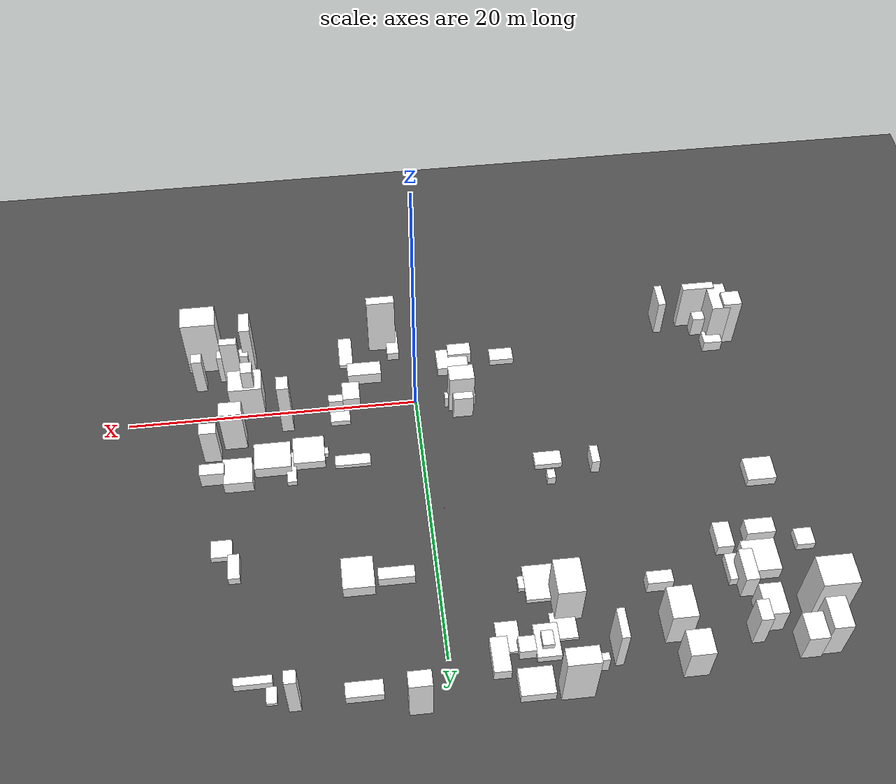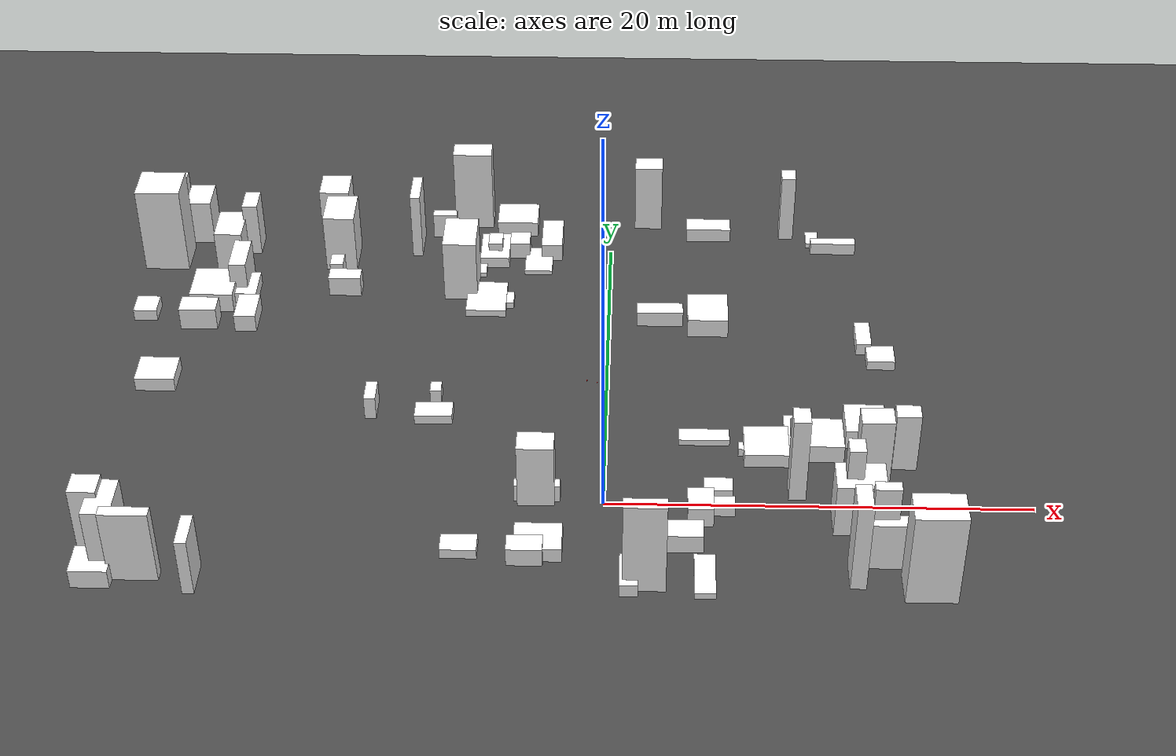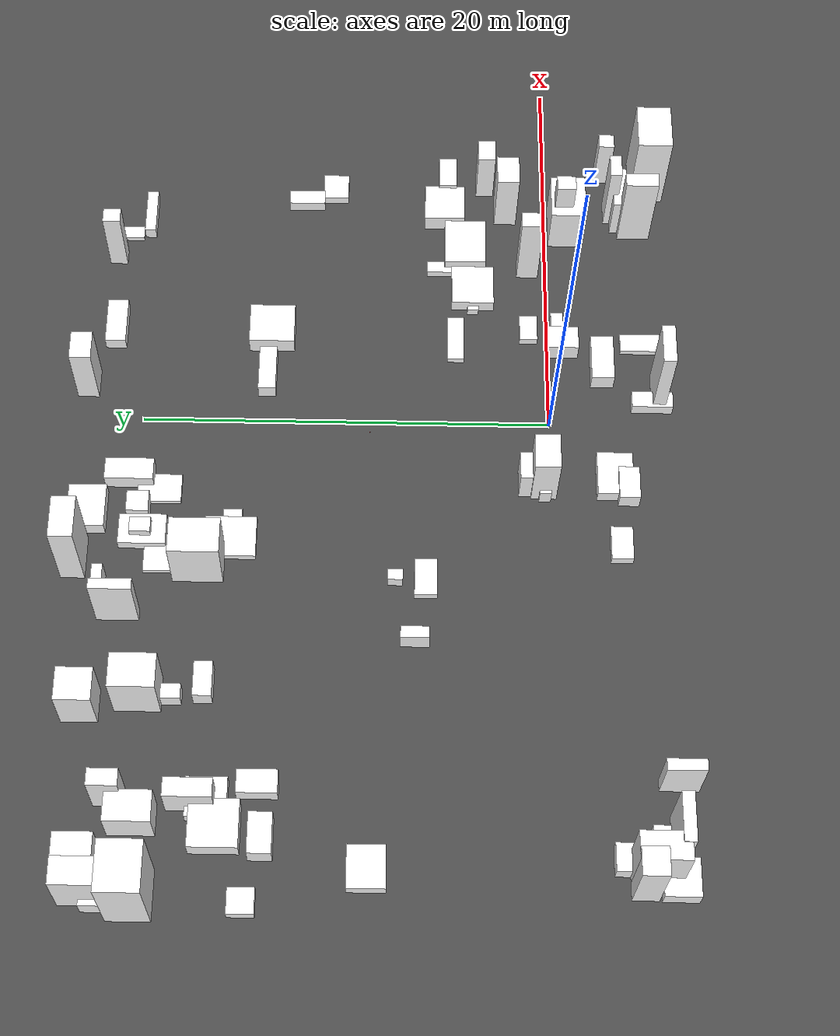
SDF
<sdf version="1.6">
 <world name="mirror_edge_world">
  <model name="ground_plane">
   <static>true</static>
   <link name="link">
    <collision name="collision">
     <geometry><plane><normal>0 0 1</normal><size>100 100</size></plane></geometry>
    </collision>
    <visual name="visual">
     <geometry><plane><normal>0 0 1</normal><size>100 100</size></plane></geometry>
     <material>
      <ambient>0.3 0.3 0.3 1</ambient>
      <diffuse>0.3 0.3 0.3 1</diffuse>
      <specular>0.5 0.5 0.5 1</specular>
      <emissive>0 0 0 1</emissive>
     </material>
    </visual>
   </link>
  </model>
  <model name="highlighted_corridor_hex_547">
   <static>true</static>
   <link name="link">
    <pose>0.024 8.696 0.015 0 0 0</pose>
    <visual name="visual">
     <geometry><cylinder><radius>0.02</radius><length>0.03</length><segments>6</segments></cylinder></geometry>
     <material>
      <ambient>1 0 0 1</ambient>
      <diffuse>1 0 0 1</diffuse>
      <specular>0.3 0.3 0.3 1</specular>
      <emissive>0 0 0 1</emissive>
     </material>
    </visual>
   </link>
  </model>
  <model name="highlighted_corridor_hex_548">
   <static>true</static>
   <link name="link">
    <pose>-0.487 8.847 0.015 0 0 0</pose>
    <visual name="visual">
     <geometry><cylinder><radius>0.02</radius><length>0.03</length><segments>6</segments></cylinder></geometry>
     <material>
      <ambient>1 0 0 1</ambient>
      <diffuse>1 0 0 1</diffuse>
      <specular>0.3 0.3 0.3 1</specular>
      <emissive>0 0 0 1</emissive>
     </material>
    </visual>
   </link>
  </model>
  <model name="highlighted_corridor_hex_549">
   <static>true</static>
   <link name="link">
    <pose>-1.0 9.0 0.015 0 0 0</pose>
    <visual name="visual">
     <geometry><cylinder><radius>0.02</radius><length>0.03</length><segments>6</segments></cylinder></geometry>
     <material>
      <ambient>1 0 0 1</ambient>
      <diffuse>1 0 0 1</diffuse>
      <specular>0.3 0.3 0.3 1</specular>
      <emissive>0 0 0 1</emissive>
     </material>
    </visual>
   </link>
  </model>
  <model name="block_0_1">
   <static>true</static>
   <link name="link">
    <pose>2.629444513336491 13.981315160203227 0.4269476987803491 0 0 0</pose>
    <collision name="collision">
     <geometry><box><size>2.3701532690823557 0.8626031007636439 0.8538953975606982</size></box></geometry>
    </collision>
    <visual name="visual">
     <geometry><box><size>2.3701532690823557 0.8626031007636439 0.8538953975606982</size></box></geometry>
     <material>
      <ambient>1 1 1 1</ambient>
      <diffuse>1 1 1 1</diffuse>
      <specular>0.9 0.9 0.9 1</specular>
      <emissive>0.05 0.05 0.05 1</emissive>
     </material>
    </visual>
   </link>
  </model>
  <model name="block_0_3">
   <static>true</static>
   <link name="link">
    <pose>-18.273868006949378 -5.4173685859005545 1.5274202341797292 0 0 0</pose>
    <visual name="visual">
     <geometry><box><size>0.5406038320486868 1.8089959335746422 3.0548404683594583</size></box></geometry>
     <material>
      <ambient>1 1 1 1</ambient>
      <diffuse>1 1 1 1</diffuse>
      <specular>0.9 0.9 0.9 1</specular>
      <emissive>0.05 0.05 0.05 1</emissive>
     </material>
    </visual>
   </link>
  </model>
  <model name="block_0_5">
   <static>true</static>
   <link name="link">
    <pose>-3.8352184328321 18.96808512698276 0.12516735218964414 0 0 0</pose>
    <collision name="collision">
     <geometry><box><size>1.4496706448813697 2.1323757690983705 0.2503347043792883</size></box></geometry>
    </collision>
    <visual name="visual">
     <geometry><box><size>1.4496706448813697 2.1323757690983705 0.2503347043792883</size></box></geometry>
     <material>
      <ambient>1 1 1 1</ambient>
      <diffuse>1 1 1 1</diffuse>
      <specular>0.9 0.9 0.9 1</specular>
      <emissive>0.05 0.05 0.05 1</emissive>
     </material>
    </visual>
   </link>
  </model>
  <model name="block_0_7">
   <static>true</static>
   <link name="link">
    <pose>9.480284427950288 21.92573647014885 1.9576652897797775 0 0 0</pose>
    <visual name="visual">
     <geometry><box><size>0.751335079702804 0.8666775056876104 3.915330579559555</size></box></geometry>
     <material>
      <ambient>1 1 1 1</ambient>
      <diffuse>1 1 1 1</diffuse>
      <specular>0.9 0.9 0.9 1</specular>
      <emissive>0.05 0.05 0.05 1</emissive>
     </material>
    </visual>
   </link>
  </model>
  <model name="block_0_13">
   <static>true</static>
   <link name="link">
    <pose>-7.522504332136052 22.814257885947693 2.339742844086078 0 0 0</pose>
    <visual name="visual">
     <geometry><box><size>2.0579455697241 1.152048496870761 4.679485688172156</size></box></geometry>
     <material>
      <ambient>1 1 1 1</ambient>
      <diffuse>1 1 1 1</diffuse>
      <specular>0.9 0.9 0.9 1</specular>
      <emissive>0.05 0.05 0.05 1</emissive>
     </material>
    </visual>
   </link>
  </model>
  <model name="block_0_14">
   <static>true</static>
   <link name="link">
    <pose>-21.109602233800054 13.335540294057918 0.6138343270782778 0 0 0</pose>
    <collision name="collision">
     <geometry><box><size>1.895913555698115 1.1050259542681802 1.2276686541565556</size></box></geometry>
    </collision>
    <visual name="visual">
     <geometry><box><size>1.895913555698115 1.1050259542681802 1.2276686541565556</size></box></geometry>
     <material>
      <ambient>1 1 1 1</ambient>
      <diffuse>1 1 1 1</diffuse>
      <specular>0.9 0.9 0.9 1</specular>
      <emissive>0.05 0.05 0.05 1</emissive>
     </material>
    </visual>
   </link>
  </model>
  <model name="block_0_16">
   <static>true</static>
   <link name="link">
    <pose>6.755678615682477 3.7517630676425453 0.21268586845512416 0 0 0</pose>
    <collision name="collision">
     <geometry><box><size>0.7675708202989666 0.5496086750619544 0.4253717369102483</size></box></geometry>
    </collision>
    <visual name="visual">
     <geometry><box><size>0.7675708202989666 0.5496086750619544 0.4253717369102483</size></box></geometry>
     <material>
      <ambient>1 1 1 1</ambient>
      <diffuse>1 1 1 1</diffuse>
      <specular>0.9 0.9 0.9 1</specular>
      <emissive>0.05 0.05 0.05 1</emissive>
     </material>
    </visual>
   </link>
  </model>
  <model name="block_0_18">
   <static>true</static>
   <link name="link">
    <pose>-23.71762395589862 20.303737631425747 0.5513021663933786 0 0 0</pose>
    <visual name="visual">
     <geometry><box><size>1.513216198312841 1.6086247681420796 1.1026043327867572</size></box></geometry>
     <material>
      <ambient>1 1 1 1</ambient>
      <diffuse>1 1 1 1</diffuse>
      <specular>0.9 0.9 0.9 1</specular>
      <emissive>0.05 0.05 0.05 1</emissive>
     </material>
    </visual>
   </link>
  </model>
  <model name="block_0_20">
   <static>true</static>
   <link name="link">
    <pose>-19.37108987945101 15.834262061965447 0.3560634926517705 0 0 0</pose>
    <collision name="collision">
     <geometry><box><size>1.853156588282586 1.8919106253806988 0.712126985303541</size></box></geometry>
    </collision>
    <visual name="visual">
     <geometry><box><size>1.853156588282586 1.8919106253806988 0.712126985303541</size></box></geometry>
     <material>
      <ambient>1 1 1 1</ambient>
      <diffuse>1 1 1 1</diffuse>
      <specular>0.9 0.9 0.9 1</specular>
      <emissive>0.05 0.05 0.05 1</emissive>
     </material>
    </visual>
   </link>
  </model>
  <model name="block_0_21">
   <static>true</static>
   <link name="link">
    <pose>-20.856737984555473 -5.245145179782628 1.9544610133703997 0 0 0</pose>
    <visual name="visual">
     <geometry><box><size>2.2417564655710596 0.5783738479369185 3.9089220267407994</size></box></geometry>
     <material>
      <ambient>1 1 1 1</ambient>
      <diffuse>1 1 1 1</diffuse>
      <specular>0.9 0.9 0.9 1</specular>
      <emissive>0.05 0.05 0.05 1</emissive>
     </material>
    </visual>
   </link>
  </model>
  <model name="block_0_23">
   <static>true</static>
   <link name="link">
    <pose>-6.413144364087131 15.416412024783103 0.1950194207174974 0 0 0</pose>
    <collision name="collision">
     <geometry><box><size>2.062364448417422 2.4881167213685345 0.3900388414349948</size></box></geometry>
    </collision>
    <visual name="visual">
     <geometry><box><size>2.062364448417422 2.4881167213685345 0.3900388414349948</size></box></geometry>
     <material>
      <ambient>1 1 1 1</ambient>
      <diffuse>1 1 1 1</diffuse>
      <specular>0.9 0.9 0.9 1</specular>
      <emissive>0.05 0.05 0.05 1</emissive>
     </material>
    </visual>
   </link>
  </model>
  <model name="block_0_28">
   <static>true</static>
   <link name="link">
    <pose>-21.839530540577137 -2.9065588741655066 0.46345977891683054 0 0 0</pose>
    <collision name="collision">
     <geometry><box><size>1.3049100902056885 1.0682382346519728 0.9269195578336611</size></box></geometry>
    </collision>
    <visual name="visual">
     <geometry><box><size>1.3049100902056885 1.0682382346519728 0.9269195578336611</size></box></geometry>
     <material>
      <ambient>1 1 1 1</ambient>
      <diffuse>1 1 1 1</diffuse>
      <specular>0.9 0.9 0.9 1</specular>
      <emissive>0.05 0.05 0.05 1</emissive>
     </material>
    </visual>
   </link>
  </model>
  <model name="block_0_31">
   <static>true</static>
   <link name="link">
    <pose>-23.703693338204445 18.986134512960607 2.42406714559323 0 0 0</pose>
    <visual name="visual">
     <geometry><box><size>2.315108026896314 2.02937166579087 4.84813429118646</size></box></geometry>
     <material>
      <ambient>1 1 1 1</ambient>
      <diffuse>1 1 1 1</diffuse>
      <specular>0.9 0.9 0.9 1</specular>
      <emissive>0.05 0.05 0.05 1</emissive>
     </material>
    </visual>
   </link>
  </model>
  <model name="block_0_32">
   <static>true</static>
   <link name="link">
    <pose>7.698962368049095 3.769381362437355 0.3718673924456554 0 0 0</pose>
    <collision name="collision">
     <geometry><box><size>2.1429566818489416 2.126988929909519 0.7437347848913108</size></box></geometry>
    </collision>
    <visual name="visual">
     <geometry><box><size>2.1429566818489416 2.126988929909519 0.7437347848913108</size></box></geometry>
     <material>
      <ambient>1 1 1 1</ambient>
      <diffuse>1 1 1 1</diffuse>
      <specular>0.9 0.9 0.9 1</specular>
      <emissive>0.05 0.05 0.05 1</emissive>
     </material>
    </visual>
   </link>
  </model>
  <model name="block_0_33">
   <static>true</static>
   <link name="link">
    <pose>5.367450124069432 0.9660401321900238 0.22560128084921166 0 0 0</pose>
    <collision name="collision">
     <geometry><box><size>1.3599452753188017 0.8900022095706712 0.4512025616984233</size></box></geometry>
    </collision>
    <visual name="visual">
     <geometry><box><size>1.3599452753188017 0.8900022095706712 0.4512025616984233</size></box></geometry>
     <material>
      <ambient>1 1 1 1</ambient>
      <diffuse>1 1 1 1</diffuse>
      <specular>0.9 0.9 0.9 1</specular>
      <emissive>0.05 0.05 0.05 1</emissive>
     </material>
    </visual>
   </link>
  </model>
  <model name="block_0_36">
   <static>true</static>
   <link name="link">
    <pose>-21.42127790640174 -4.358917305977949 0.8458310567495615 0 0 0</pose>
    <visual name="visual">
     <geometry><box><size>1.6201014993000642 0.7743602277613992 1.691662113499123</size></box></geometry>
     <material>
      <ambient>1 1 1 1</ambient>
      <diffuse>1 1 1 1</diffuse>
      <specular>0.9 0.9 0.9 1</specular>
      <emissive>0.05 0.05 0.05 1</emissive>
     </material>
    </visual>
   </link>
  </model>
  <model name="block_0_41">
   <static>true</static>
   <link name="link">
    <pose>-3.4793820392597823 -3.7263772785713614 0.48616672487868307 0 0 0</pose>
    <collision name="collision">
     <geometry><box><size>1.653894337966383 1.0089899510909628 0.9723334497573661</size></box></geometry>
    </collision>
    <visual name="visual">
     <geometry><box><size>1.653894337966383 1.0089899510909628 0.9723334497573661</size></box></geometry>
     <material>
      <ambient>1 1 1 1</ambient>
      <diffuse>1 1 1 1</diffuse>
      <specular>0.9 0.9 0.9 1</specular>
      <emissive>0.05 0.05 0.05 1</emissive>
     </material>
    </visual>
   </link>
  </model>
  <model name="block_0_42">
   <static>true</static>
   <link name="link">
    <pose>-7.406578529971302 18.57170572120448 0.13677045470906196 0 0 0</pose>
    <collision name="collision">
     <geometry><box><size>1.6328084682620279 1.8653019584591002 0.2735409094181239</size></box></geometry>
    </collision>
    <visual name="visual">
     <geometry><box><size>1.6328084682620279 1.8653019584591002 0.2735409094181239</size></box></geometry>
     <material>
      <ambient>1 1 1 1</ambient>
      <diffuse>1 1 1 1</diffuse>
      <specular>0.9 0.9 0.9 1</specular>
      <emissive>0.05 0.05 0.05 1</emissive>
     </material>
    </visual>
   </link>
  </model>
  <model name="block_0_43">
   <static>true</static>
   <link name="link">
    <pose>4.643851952008163 -4.876867942431691 0.16879219770917786 0 0 0</pose>
    <collision name="collision">
     <geometry><box><size>0.9598692796326942 2.4956226432378505 0.3375843954183557</size></box></geometry>
    </collision>
    <visual name="visual">
     <geometry><box><size>0.9598692796326942 2.4956226432378505 0.3375843954183557</size></box></geometry>
     <material>
      <ambient>1 1 1 1</ambient>
      <diffuse>1 1 1 1</diffuse>
      <specular>0.9 0.9 0.9 1</specular>
      <emissive>0.05 0.05 0.05 1</emissive>
     </material>
    </visual>
   </link>
  </model>
  <model name="block_0_45">
   <static>true</static>
   <link name="link">
    <pose>-19.28074984160375 20.231629219767814 1.5053115837664646 0 0 0</pose>
    <visual name="visual">
     <geometry><box><size>0.7983353302962468 1.4119111531609847 3.010623167532929</size></box></geometry>
     <material>
      <ambient>1 1 1 1</ambient>
      <diffuse>1 1 1 1</diffuse>
      <specular>0.9 0.9 0.9 1</specular>
      <emissive>0.05 0.05 0.05 1</emissive>
     </material>
    </visual>
   </link>
  </model>
  <model name="block_0_48">
   <static>true</static>
   <link name="link">
    <pose>-23.565720476234148 21.08714716693098 1.7139107302081764 0 0 0</pose>
    <visual name="visual">
     <geometry><box><size>1.2669333502445381 2.127053407528151 3.427821460416353</size></box></geometry>
     <material>
      <ambient>1 1 1 1</ambient>
      <diffuse>1 1 1 1</diffuse>
      <specular>0.9 0.9 0.9 1</specular>
      <emissive>0.05 0.05 0.05 1</emissive>
     </material>
    </visual>
   </link>
  </model>
  <model name="block_0_49">
   <static>true</static>
   <link name="link">
    <pose>12.495422146052576 5.194693032887604 0.5214726340098346 0 0 0</pose>
    <visual name="visual">
     <geometry><box><size>1.9661904336053282 2.0338894365308784 1.0429452680196691</size></box></geometry>
     <material>
      <ambient>1 1 1 1</ambient>
      <diffuse>1 1 1 1</diffuse>
      <specular>0.9 0.9 0.9 1</specular>
      <emissive>0.05 0.05 0.05 1</emissive>
     </material>
    </visual>
   </link>
  </model>
  <model name="block_0_50">
   <static>true</static>
   <link name="link">
    <pose>14.624827529963788 -5.286655872249478 2.4849495876334755 0 0 0</pose>
    <visual name="visual">
     <geometry><box><size>2.3690260256833104 1.7209152380778632 4.969899175266951</size></box></geometry>
     <material>
      <ambient>1 1 1 1</ambient>
      <diffuse>1 1 1 1</diffuse>
      <specular>0.9 0.9 0.9 1</specular>
      <emissive>0.05 0.05 0.05 1</emissive>
     </material>
    </visual>
   </link>
  </model>
  <model name="block_0_52">
   <static>true</static>
   <link name="link">
    <pose>-2.9017386907661233 -3.074098491872549 0.38654898876220134 0 0 0</pose>
    <collision name="collision">
     <geometry><box><size>2.205480444679205 1.7390335458004285 0.7730979775244027</size></box></geometry>
    </collision>
    <visual name="visual">
     <geometry><box><size>2.205480444679205 1.7390335458004285 0.7730979775244027</size></box></geometry>
     <material>
      <ambient>1 1 1 1</ambient>
      <diffuse>1 1 1 1</diffuse>
      <specular>0.9 0.9 0.9 1</specular>
      <emissive>0.05 0.05 0.05 1</emissive>
     </material>
    </visual>
   </link>
  </model>
  <model name="block_0_53">
   <static>true</static>
   <link name="link">
    <pose>3.4270410552564137 -2.6563073322089035 0.49906583283253253 0 0 0</pose>
    <collision name="collision">
     <geometry><box><size>2.3679812661802457 1.125164629689853 0.9981316656650651</size></box></geometry>
    </collision>
    <visual name="visual">
     <geometry><box><size>2.3679812661802457 1.125164629689853 0.9981316656650651</size></box></geometry>
     <material>
      <ambient>1 1 1 1</ambient>
      <diffuse>1 1 1 1</diffuse>
      <specular>0.9 0.9 0.9 1</specular>
      <emissive>0.05 0.05 0.05 1</emissive>
     </material>
    </visual>
   </link>
  </model>
  <model name="block_0_54">
   <static>true</static>
   <link name="link">
    <pose>-22.24149848192369 21.37847639963477 1.261527958747312 0 0 0</pose>
    <visual name="visual">
     <geometry><box><size>1.3001545962151229 1.8091949695556868 2.523055917494624</size></box></geometry>
     <material>
      <ambient>1 1 1 1</ambient>
      <diffuse>1 1 1 1</diffuse>
      <specular>0.9 0.9 0.9 1</specular>
      <emissive>0.05 0.05 0.05 1</emissive>
     </material>
    </visual>
   </link>
  </model>
  <model name="block_0_56">
   <static>true</static>
   <link name="link">
    <pose>11.9433464176469 20.385797163674933 0.3385297522512108 0 0 0</pose>
    <collision name="collision">
     <geometry><box><size>2.384854056991715 0.5508524773355725 0.6770595045024216</size></box></geometry>
    </collision>
    <visual name="visual">
     <geometry><box><size>2.384854056991715 0.5508524773355725 0.6770595045024216</size></box></geometry>
     <material>
      <ambient>1 1 1 1</ambient>
      <diffuse>1 1 1 1</diffuse>
      <specular>0.9 0.9 0.9 1</specular>
      <emissive>0.05 0.05 0.05 1</emissive>
     </material>
    </visual>
   </link>
  </model>
  <model name="block_0_58">
   <static>true</static>
   <link name="link">
    <pose>1.9912580201610908 22.845832839678657 1.9519743382782802 0 0 0</pose>
    <visual name="visual">
     <geometry><box><size>1.446916084502937 1.0459190653577304 3.9039486765565603</size></box></geometry>
     <material>
      <ambient>1 1 1 1</ambient>
      <diffuse>1 1 1 1</diffuse>
      <specular>0.9 0.9 0.9 1</specular>
      <emissive>0.05 0.05 0.05 1</emissive>
     </material>
    </visual>
   </link>
  </model>
  <model name="block_0_65">
   <static>true</static>
   <link name="link">
    <pose>-14.49853010107496 18.039107482353177 0.4883631403128049 0 0 0</pose>
    <collision name="collision">
     <geometry><box><size>0.6945020475818915 1.5757758818101648 0.9767262806256098</size></box></geometry>
    </collision>
    <visual name="visual">
     <geometry><box><size>0.6945020475818915 1.5757758818101648 0.9767262806256098</size></box></geometry>
     <material>
      <ambient>1 1 1 1</ambient>
      <diffuse>1 1 1 1</diffuse>
      <specular>0.9 0.9 0.9 1</specular>
      <emissive>0.05 0.05 0.05 1</emissive>
     </material>
    </visual>
   </link>
  </model>
  <model name="block_0_66">
   <static>true</static>
   <link name="link">
    <pose>-8.400671071945288 6.052286329398913 0.24929776146395155 0 0 0</pose>
    <collision name="collision">
     <geometry><box><size>1.8422506774499918 1.074176008124148 0.4985955229279031</size></box></geometry>
    </collision>
    <visual name="visual">
     <geometry><box><size>1.8422506774499918 1.074176008124148 0.4985955229279031</size></box></geometry>
     <material>
      <ambient>1 1 1 1</ambient>
      <diffuse>1 1 1 1</diffuse>
      <specular>0.9 0.9 0.9 1</specular>
      <emissive>0.05 0.05 0.05 1</emissive>
     </material>
    </visual>
   </link>
  </model>
  <model name="block_0_67">
   <static>true</static>
   <link name="link">
    <pose>12.62508989323895 -3.330745463682743 2.1777966595249643 0 0 0</pose>
    <visual name="visual">
     <geometry><box><size>1.1871718024264302 0.5721815843821825 4.3555933190499285</size></box></geometry>
     <material>
      <ambient>1 1 1 1</ambient>
      <diffuse>1 1 1 1</diffuse>
      <specular>0.9 0.9 0.9 1</specular>
      <emissive>0.05 0.05 0.05 1</emissive>
     </material>
    </visual>
   </link>
  </model>
  <model name="block_1_1">
   <static>true</static>
   <link name="link">
    <pose>-23.996591118951777 14.080130138798122 0.31013549173174104 0 0 0</pose>
    <collision name="collision">
     <geometry><box><size>1.1995651236787712 1.2419921461193266 0.6202709834634821</size></box></geometry>
    </collision>
    <visual name="visual">
     <geometry><box><size>1.1995651236787712 1.2419921461193266 0.6202709834634821</size></box></geometry>
     <material>
      <ambient>1 1 1 1</ambient>
      <diffuse>1 1 1 1</diffuse>
      <specular>0.9 0.9 0.9 1</specular>
      <emissive>0.05 0.05 0.05 1</emissive>
     </material>
    </visual>
   </link>
  </model>
  <model name="block_1_3">
   <static>true</static>
   <link name="link">
    <pose>-20.67270229569463 15.418844965602378 0.548886509817033 0 0 0</pose>
    <visual name="visual">
     <geometry><box><size>2.2329226408507274 2.2964705875090985 1.097773019634066</size></box></geometry>
     <material>
      <ambient>1 1 1 1</ambient>
      <diffuse>1 1 1 1</diffuse>
      <specular>0.9 0.9 0.9 1</specular>
      <emissive>0.05 0.05 0.05 1</emissive>
     </material>
    </visual>
   </link>
  </model>
  <model name="block_1_7">
   <static>true</static>
   <link name="link">
    <pose>-18.681572058848502 13.571074400856126 0.47995678192979313 0 0 0</pose>
    <collision name="collision">
     <geometry><box><size>1.105224794810614 1.8836158707953992 0.9599135638595863</size></box></geometry>
    </collision>
    <visual name="visual">
     <geometry><box><size>1.105224794810614 1.8836158707953992 0.9599135638595863</size></box></geometry>
     <material>
      <ambient>1 1 1 1</ambient>
      <diffuse>1 1 1 1</diffuse>
      <specular>0.9 0.9 0.9 1</specular>
      <emissive>0.05 0.05 0.05 1</emissive>
     </material>
    </visual>
   </link>
  </model>
  <model name="block_1_10">
   <static>true</static>
   <link name="link">
    <pose>-7.789768321775842 16.85820155292157 1.736157896754126 0 0 0</pose>
    <visual name="visual">
     <geometry><box><size>1.7293843462898204 2.410631189251779 3.472315793508252</size></box></geometry>
     <material>
      <ambient>1 1 1 1</ambient>
      <diffuse>1 1 1 1</diffuse>
      <specular>0.9 0.9 0.9 1</specular>
      <emissive>0.05 0.05 0.05 1</emissive>
     </material>
    </visual>
   </link>
  </model>
  <model name="block_1_11">
   <static>true</static>
   <link name="link">
    <pose>-11.499437916183552 6.549853693440727 0.6082840659264529 0 0 0</pose>
    <collision name="collision">
     <geometry><box><size>0.564934390722093 1.3615767898200373 1.2165681318529058</size></box></geometry>
    </collision>
    <visual name="visual">
     <geometry><box><size>0.564934390722093 1.3615767898200373 1.2165681318529058</size></box></geometry>
     <material>
      <ambient>1 1 1 1</ambient>
      <diffuse>1 1 1 1</diffuse>
      <specular>0.9 0.9 0.9 1</specular>
      <emissive>0.05 0.05 0.05 1</emissive>
     </material>
    </visual>
   </link>
  </model>
  <model name="block_1_14">
   <static>true</static>
   <link name="link">
    <pose>10.871346085913082 21.279167339518793 0.13368172636693965 0 0 0</pose>
    <collision name="collision">
     <geometry><box><size>0.6630004812755352 1.1135532611240513 0.2673634527338793</size></box></geometry>
    </collision>
    <visual name="visual">
     <geometry><box><size>0.6630004812755352 1.1135532611240513 0.2673634527338793</size></box></geometry>
     <material>
      <ambient>1 1 1 1</ambient>
      <diffuse>1 1 1 1</diffuse>
      <specular>0.9 0.9 0.9 1</specular>
      <emissive>0.05 0.05 0.05 1</emissive>
     </material>
    </visual>
   </link>
  </model>
  <model name="block_1_16">
   <static>true</static>
   <link name="link">
    <pose>11.709721149926558 -1.0243684717145376 1.4373108790838298 0 0 0</pose>
    <visual name="visual">
     <geometry><box><size>2.311394147516197 1.7515218412176905 2.8746217581676596</size></box></geometry>
     <material>
      <ambient>1 1 1 1</ambient>
      <diffuse>1 1 1 1</diffuse>
      <specular>0.9 0.9 0.9 1</specular>
      <emissive>0.05 0.05 0.05 1</emissive>
     </material>
    </visual>
   </link>
  </model>
  <model name="block_1_18">
   <static>true</static>
   <link name="link">
    <pose>-22.41166076357768 8.615046499795437 0.37055608547858065 0 0 0</pose>
    <collision name="collision">
     <geometry><box><size>1.9802369601095118 1.7702593418495576 0.7411121709571613</size></box></geometry>
    </collision>
    <visual name="visual">
     <geometry><box><size>1.9802369601095118 1.7702593418495576 0.7411121709571613</size></box></geometry>
     <material>
      <ambient>1 1 1 1</ambient>
      <diffuse>1 1 1 1</diffuse>
      <specular>0.9 0.9 0.9 1</specular>
      <emissive>0.05 0.05 0.05 1</emissive>
     </material>
    </visual>
   </link>
  </model>
  <model name="block_1_20">
   <static>true</static>
   <link name="link">
    <pose>-22.115563770494244 -4.223029042418254 1.9017977120916332 0 0 0</pose>
    <visual name="visual">
     <geometry><box><size>1.2906029649706958 2.2968445982548618 3.8035954241832663</size></box></geometry>
     <material>
      <ambient>1 1 1 1</ambient>
      <diffuse>1 1 1 1</diffuse>
      <specular>0.9 0.9 0.9 1</specular>
      <emissive>0.05 0.05 0.05 1</emissive>
     </material>
    </visual>
   </link>
  </model>
  <model name="block_1_26">
   <static>true</static>
   <link name="link">
    <pose>14.213701324948957 5.042983742585776 0.646047609427207 0 0 0</pose>
    <visual name="visual">
     <geometry><box><size>1.6569587933766257 0.8956356283868563 1.292095218854414</size></box></geometry>
     <material>
      <ambient>1 1 1 1</ambient>
      <diffuse>1 1 1 1</diffuse>
      <specular>0.9 0.9 0.9 1</specular>
      <emissive>0.05 0.05 0.05 1</emissive>
     </material>
    </visual>
   </link>
  </model>
  <model name="block_1_29">
   <static>true</static>
   <link name="link">
    <pose>-22.891715956063592 -3.688284922354036 2.0511497218501487 0 0 0</pose>
    <visual name="visual">
     <geometry><box><size>1.2972639435842999 1.2216080200055859 4.102299443700297</size></box></geometry>
     <material>
      <ambient>1 1 1 1</ambient>
      <diffuse>1 1 1 1</diffuse>
      <specular>0.9 0.9 0.9 1</specular>
      <emissive>0.05 0.05 0.05 1</emissive>
     </material>
    </visual>
   </link>
  </model>
  <model name="block_1_31">
   <static>true</static>
   <link name="link">
    <pose>12.638004833948258 2.0637438273320035 1.9131439175529716 0 0 0</pose>
    <visual name="visual">
     <geometry><box><size>1.5469200426190246 1.1100366738948544 3.8262878351059433</size></box></geometry>
     <material>
      <ambient>1 1 1 1</ambient>
      <diffuse>1 1 1 1</diffuse>
      <specular>0.9 0.9 0.9 1</specular>
      <emissive>0.05 0.05 0.05 1</emissive>
     </material>
    </visual>
   </link>
  </model>
  <model name="block_1_32">
   <static>true</static>
   <link name="link">
    <pose>5.088066297430366 -0.4506466897997763 0.3574355079418666 0 0 0</pose>
    <collision name="collision">
     <geometry><box><size>2.0401307124265595 0.606362487570371 0.7148710158837333</size></box></geometry>
    </collision>
    <visual name="visual">
     <geometry><box><size>2.0401307124265595 0.606362487570371 0.7148710158837333</size></box></geometry>
     <material>
      <ambient>1 1 1 1</ambient>
      <diffuse>1 1 1 1</diffuse>
      <specular>0.9 0.9 0.9 1</specular>
      <emissive>0.05 0.05 0.05 1</emissive>
     </material>
    </visual>
   </link>
  </model>
  <model name="block_1_34">
   <static>true</static>
   <link name="link">
    <pose>1.9267001363707656 -5.399263894140973 2.4986315387311167 0 0 0</pose>
    <visual name="visual">
     <geometry><box><size>1.9476947776372144 0.6416287581053726 4.997263077462233</size></box></geometry>
     <material>
      <ambient>1 1 1 1</ambient>
      <diffuse>1 1 1 1</diffuse>
      <specular>0.9 0.9 0.9 1</specular>
      <emissive>0.05 0.05 0.05 1</emissive>
     </material>
    </visual>
   </link>
  </model>
  <model name="block_1_36">
   <static>true</static>
   <link name="link">
    <pose>14.962415400164957 -3.041885832910059 1.5979104589280004 0 0 0</pose>
    <visual name="visual">
     <geometry><box><size>0.7409545632335175 0.7787663961692544 3.195820917856001</size></box></geometry>
     <material>
      <ambient>1 1 1 1</ambient>
      <diffuse>1 1 1 1</diffuse>
      <specular>0.9 0.9 0.9 1</specular>
      <emissive>0.05 0.05 0.05 1</emissive>
     </material>
    </visual>
   </link>
  </model>
  <model name="block_1_39">
   <static>true</static>
   <link name="link">
    <pose>9.029376267873964 0.9628551569336876 2.3595639955608814 0 0 0</pose>
    <visual name="visual">
     <geometry><box><size>0.8079612985124851 1.0744561228839276 4.719127991121763</size></box></geometry>
     <material>
      <ambient>1 1 1 1</ambient>
      <diffuse>1 1 1 1</diffuse>
      <specular>0.9 0.9 0.9 1</specular>
      <emissive>0.05 0.05 0.05 1</emissive>
     </material>
    </visual>
   </link>
  </model>
  <model name="block_1_40">
   <static>true</static>
   <link name="link">
    <pose>-6.1946121788369375 19.62426852716283 0.309794988875328 0 0 0</pose>
    <collision name="collision">
     <geometry><box><size>1.5392224633511473 2.2834477757273626 0.619589977750656</size></box></geometry>
    </collision>
    <visual name="visual">
     <geometry><box><size>1.5392224633511473 2.2834477757273626 0.619589977750656</size></box></geometry>
     <material>
      <ambient>1 1 1 1</ambient>
      <diffuse>1 1 1 1</diffuse>
      <specular>0.9 0.9 0.9 1</specular>
      <emissive>0.05 0.05 0.05 1</emissive>
     </material>
    </visual>
   </link>
  </model>
  <model name="block_1_41">
   <static>true</static>
   <link name="link">
    <pose>-3.1281731917563 0.38101199631752714 1.7270313494007348 0 0 0</pose>
    <visual name="visual">
     <geometry><box><size>1.736108202462924 1.2259116838539548 3.4540626988014695</size></box></geometry>
     <material>
      <ambient>1 1 1 1</ambient>
      <diffuse>1 1 1 1</diffuse>
      <specular>0.9 0.9 0.9 1</specular>
      <emissive>0.05 0.05 0.05 1</emissive>
     </material>
    </visual>
   </link>
  </model>
  <model name="block_1_43">
   <static>true</static>
   <link name="link">
    <pose>-10.416903634427939 20.51118314706002 1.8565651835776171 0 0 0</pose>
    <visual name="visual">
     <geometry><box><size>0.52004038210548 2.0020981656002705 3.7131303671552343</size></box></geometry>
     <material>
      <ambient>1 1 1 1</ambient>
      <diffuse>1 1 1 1</diffuse>
      <specular>0.9 0.9 0.9 1</specular>
      <emissive>0.05 0.05 0.05 1</emissive>
     </material>
    </visual>
   </link>
  </model>
  <model name="block_1_44">
   <static>true</static>
   <link name="link">
    <pose>-3.1829462978478027 0.9107829406466754 1.0156985101495437 0 0 0</pose>
    <visual name="visual">
     <geometry><box><size>1.3750172643781804 1.3534222595278589 2.0313970202990874</size></box></geometry>
     <material>
      <ambient>1 1 1 1</ambient>
      <diffuse>1 1 1 1</diffuse>
      <specular>0.9 0.9 0.9 1</specular>
      <emissive>0.05 0.05 0.05 1</emissive>
     </material>
    </visual>
   </link>
  </model>
  <model name="block_1_46">
   <static>true</static>
   <link name="link">
    <pose>11.426204332537147 -0.7973311082426822 2.2496180496602207 0 0 0</pose>
    <visual name="visual">
     <geometry><box><size>0.7682921523180308 0.9313028206920195 4.499236099320441</size></box></geometry>
     <material>
      <ambient>1 1 1 1</ambient>
      <diffuse>1 1 1 1</diffuse>
      <specular>0.9 0.9 0.9 1</specular>
      <emissive>0.05 0.05 0.05 1</emissive>
     </material>
    </visual>
   </link>
  </model>
  <model name="block_1_47">
   <static>true</static>
   <link name="link">
    <pose>1.230962178614945 -5.063889858814828 0.3492336775525117 0 0 0</pose>
    <collision name="collision">
     <geometry><box><size>0.840198938275567 2.017972633859448 0.6984673551050234</size></box></geometry>
    </collision>
    <visual name="visual">
     <geometry><box><size>0.840198938275567 2.017972633859448 0.6984673551050234</size></box></geometry>
     <material>
      <ambient>1 1 1 1</ambient>
      <diffuse>1 1 1 1</diffuse>
      <specular>0.9 0.9 0.9 1</specular>
      <emissive>0.05 0.05 0.05 1</emissive>
     </material>
    </visual>
   </link>
  </model>
  <model name="block_1_48">
   <static>true</static>
   <link name="link">
    <pose>10.15396993840951 4.140382816513546 0.4911931143094457 0 0 0</pose>
    <collision name="collision">
     <geometry><box><size>2.4800251484667957 2.0803916049980975 0.9823862286188914</size></box></geometry>
    </collision>
    <visual name="visual">
     <geometry><box><size>2.4800251484667957 2.0803916049980975 0.9823862286188914</size></box></geometry>
     <material>
      <ambient>1 1 1 1</ambient>
      <diffuse>1 1 1 1</diffuse>
      <specular>0.9 0.9 0.9 1</specular>
      <emissive>0.05 0.05 0.05 1</emissive>
     </material>
    </visual>
   </link>
  </model>
  <model name="block_1_56">
   <static>true</static>
   <link name="link">
    <pose>-14.361645135748427 19.261265471896802 1.618040204227366 0 0 0</pose>
    <visual name="visual">
     <geometry><box><size>1.6314641460721797 2.1690659820234477 3.236080408454732</size></box></geometry>
     <material>
      <ambient>1 1 1 1</ambient>
      <diffuse>1 1 1 1</diffuse>
      <specular>0.9 0.9 0.9 1</specular>
      <emissive>0.05 0.05 0.05 1</emissive>
     </material>
    </visual>
   </link>
  </model>
  <model name="block_1_57">
   <static>true</static>
   <link name="link">
    <pose>13.732842904357724 10.844747575411272 0.25831963320444784 0 0 0</pose>
    <collision name="collision">
     <geometry><box><size>1.399594594685642 1.2844108787234834 0.5166392664088957</size></box></geometry>
    </collision>
    <visual name="visual">
     <geometry><box><size>1.399594594685642 1.2844108787234834 0.5166392664088957</size></box></geometry>
     <material>
      <ambient>1 1 1 1</ambient>
      <diffuse>1 1 1 1</diffuse>
      <specular>0.9 0.9 0.9 1</specular>
      <emissive>0.05 0.05 0.05 1</emissive>
     </material>
    </visual>
   </link>
  </model>
  <model name="block_1_63">
   <static>true</static>
   <link name="link">
    <pose>-3.0863987485508133 0.3295613517911269 0.4710132750613483 0 0 0</pose>
    <collision name="collision">
     <geometry><box><size>2.1539550453142233 0.5651891597059295 0.9420265501226966</size></box></geometry>
    </collision>
    <visual name="visual">
     <geometry><box><size>2.1539550453142233 0.5651891597059295 0.9420265501226966</size></box></geometry>
     <material>
      <ambient>1 1 1 1</ambient>
      <diffuse>1 1 1 1</diffuse>
      <specular>0.9 0.9 0.9 1</specular>
      <emissive>0.05 0.05 0.05 1</emissive>
     </material>
    </visual>
   </link>
  </model>
  <model name="block_1_65">
   <static>true</static>
   <link name="link">
    <pose>-19.394776112546094 16.56109995044536 1.0703002404098647 0 0 0</pose>
    <visual name="visual">
     <geometry><box><size>0.8865690374110793 2.231600726168433 2.1406004808197294</size></box></geometry>
     <material>
      <ambient>1 1 1 1</ambient>
      <diffuse>1 1 1 1</diffuse>
      <specular>0.9 0.9 0.9 1</specular>
      <emissive>0.05 0.05 0.05 1</emissive>
     </material>
    </visual>
   </link>
  </model>
  <model name="block_1_67">
   <static>true</static>
   <link name="link">
    <pose>-8.40511343283238 7.5079933551453975 0.36597102170587426 0 0 0</pose>
    <collision name="collision">
     <geometry><box><size>0.5475842081450679 0.7220824582776573 0.7319420434117485</size></box></geometry>
    </collision>
    <visual name="visual">
     <geometry><box><size>0.5475842081450679 0.7220824582776573 0.7319420434117485</size></box></geometry>
     <material>
      <ambient>1 1 1 1</ambient>
      <diffuse>1 1 1 1</diffuse>
      <specular>0.9 0.9 0.9 1</specular>
      <emissive>0.05 0.05 0.05 1</emissive>
     </material>
    </visual>
   </link>
  </model>
  <model name="block_2_1">
   <static>true</static>
   <link name="link">
    <pose>-6.489470957508754 -3.300974075441825 0.26262672456088093 0 0 0</pose>
    <collision name="collision">
     <geometry><box><size>1.6865170280731165 1.0550452812811713 0.5252534491217619</size></box></geometry>
    </collision>
    <visual name="visual">
     <geometry><box><size>1.6865170280731165 1.0550452812811713 0.5252534491217619</size></box></geometry>
     <material>
      <ambient>1 1 1 1</ambient>
      <diffuse>1 1 1 1</diffuse>
      <specular>0.9 0.9 0.9 1</specular>
      <emissive>0.05 0.05 0.05 1</emissive>
     </material>
    </visual>
   </link>
  </model>
  <model name="block_2_3">
   <static>true</static>
   <link name="link">
    <pose>12.950889018348064 12.331922810647328 0.33293234468900973 0 0 0</pose>
    <collision name="collision">
     <geometry><box><size>0.7646444617516395 1.8144079985074593 0.6658646893780195</size></box></geometry>
    </collision>
    <visual name="visual">
     <geometry><box><size>0.7646444617516395 1.8144079985074593 0.6658646893780195</size></box></geometry>
     <material>
      <ambient>1 1 1 1</ambient>
      <diffuse>1 1 1 1</diffuse>
      <specular>0.9 0.9 0.9 1</specular>
      <emissive>0.05 0.05 0.05 1</emissive>
     </material>
    </visual>
   </link>
  </model>
  <model name="block_2_11">
   <static>true</static>
   <link name="link">
    <pose>-20.292655079035512 19.13903215203452 1.108248446206975 0 0 0</pose>
    <visual name="visual">
     <geometry><box><size>1.4500698155241334 2.158900582396358 2.21649689241395</size></box></geometry>
     <material>
      <ambient>1 1 1 1</ambient>
      <diffuse>1 1 1 1</diffuse>
      <specular>0.9 0.9 0.9 1</specular>
      <emissive>0.05 0.05 0.05 1</emissive>
     </material>
    </visual>
   </link>
  </model>
  <model name="block_2_14">
   <static>true</static>
   <link name="link">
    <pose>-13.907730911790331 16.265660009262596 0.5476152897481485 0 0 0</pose>
    <collision name="collision">
     <geometry><box><size>1.6727349534811748 0.8869064988442894 1.095230579496297</size></box></geometry>
    </collision>
    <visual name="visual">
     <geometry><box><size>1.6727349534811748 0.8869064988442894 1.095230579496297</size></box></geometry>
     <material>
      <ambient>1 1 1 1</ambient>
      <diffuse>1 1 1 1</diffuse>
      <specular>0.9 0.9 0.9 1</specular>
      <emissive>0.05 0.05 0.05 1</emissive>
     </material>
    </visual>
   </link>
  </model>
  <model name="block_2_15">
   <static>true</static>
   <link name="link">
    <pose>4.762873629288187 4.6213213138632065 0.16806991965984036 0 0 0</pose>
    <collision name="collision">
     <geometry><box><size>2.4243406941798717 0.84244315074207 0.3361398393196807</size></box></geometry>
    </collision>
    <visual name="visual">
     <geometry><box><size>2.4243406941798717 0.84244315074207 0.3361398393196807</size></box></geometry>
     <material>
      <ambient>1 1 1 1</ambient>
      <diffuse>1 1 1 1</diffuse>
      <specular>0.9 0.9 0.9 1</specular>
      <emissive>0.05 0.05 0.05 1</emissive>
     </material>
    </visual>
   </link>
  </model>
  <model name="block_2_17">
   <static>true</static>
   <link name="link">
    <pose>14.210426235708425 3.1087088047237126 1.627983063995315 0 0 0</pose>
    <visual name="visual">
     <geometry><box><size>1.171717399699058 0.8749968592188864 3.25596612799063</size></box></geometry>
     <material>
      <ambient>1 1 1 1</ambient>
      <diffuse>1 1 1 1</diffuse>
      <specular>0.9 0.9 0.9 1</specular>
      <emissive>0.05 0.05 0.05 1</emissive>
     </material>
    </visual>
   </link>
  </model>
  <model name="block_2_19">
   <static>true</static>
   <link name="link">
    <pose>-22.700834677034102 -5.243611528903661 0.5009423109398221 0 0 0</pose>
    <visual name="visual">
     <geometry><box><size>1.7672811802209452 1.6629863219197691 1.0018846218796442</size></box></geometry>
     <material>
      <ambient>1 1 1 1</ambient>
      <diffuse>1 1 1 1</diffuse>
      <specular>0.9 0.9 0.9 1</specular>
      <emissive>0.05 0.05 0.05 1</emissive>
     </material>
    </visual>
   </link>
  </model>
  <model name="block_2_21">
   <static>true</static>
   <link name="link">
    <pose>12.542350393017628 -3.7025913377603095 1.3007665177924317 0 0 0</pose>
    <visual name="visual">
     <geometry><box><size>2.177656140439481 0.6964266355024482 2.6015330355848634</size></box></geometry>
     <material>
      <ambient>1 1 1 1</ambient>
      <diffuse>1 1 1 1</diffuse>
      <specular>0.9 0.9 0.9 1</specular>
      <emissive>0.05 0.05 0.05 1</emissive>
     </material>
    </visual>
   </link>
  </model>
  <model name="block_2_22">
   <static>true</static>
   <link name="link">
    <pose>-6.1815181995574875 19.69775695983269 0.5364985692861566 0 0 0</pose>
    <visual name="visual">
     <geometry><box><size>0.7373139425827107 1.0140259561959375 1.0729971385723132</size></box></geometry>
     <material>
      <ambient>1 1 1 1</ambient>
      <diffuse>1 1 1 1</diffuse>
      <specular>0.9 0.9 0.9 1</specular>
      <emissive>0.05 0.05 0.05 1</emissive>
     </material>
    </visual>
   </link>
  </model>
  <model name="block_2_26">
   <static>true</static>
   <link name="link">
    <pose>-4.877386484011716 19.910738675954526 0.48228530141425 0 0 0</pose>
    <collision name="collision">
     <geometry><box><size>1.06114844351267 1.0744406968777336 0.9645706028285</size></box></geometry>
    </collision>
    <visual name="visual">
     <geometry><box><size>1.06114844351267 1.0744406968777336 0.9645706028285</size></box></geometry>
     <material>
      <ambient>1 1 1 1</ambient>
      <diffuse>1 1 1 1</diffuse>
      <specular>0.9 0.9 0.9 1</specular>
      <emissive>0.05 0.05 0.05 1</emissive>
     </material>
    </visual>
   </link>
  </model>
  <model name="block_2_29">
   <static>true</static>
   <link name="link">
    <pose>-3.1594442136931065 20.432778771071984 0.4861732779752293 0 0 0</pose>
    <collision name="collision">
     <geometry><box><size>1.1027524905099333 2.3652559093447634 0.9723465559504586</size></box></geometry>
    </collision>
    <visual name="visual">
     <geometry><box><size>1.1027524905099333 2.3652559093447634 0.9723465559504586</size></box></geometry>
     <material>
      <ambient>1 1 1 1</ambient>
      <diffuse>1 1 1 1</diffuse>
      <specular>0.9 0.9 0.9 1</specular>
      <emissive>0.05 0.05 0.05 1</emissive>
     </material>
    </visual>
   </link>
  </model>
  <model name="block_2_30">
   <static>true</static>
   <link name="link">
    <pose>-14.953466777478468 21.888198590632364 1.4688620483892978 0 0 0</pose>
    <visual name="visual">
     <geometry><box><size>1.5751176976927594 1.7095588204765388 2.9377240967785956</size></box></geometry>
     <material>
      <ambient>1 1 1 1</ambient>
      <diffuse>1 1 1 1</diffuse>
      <specular>0.9 0.9 0.9 1</specular>
      <emissive>0.05 0.05 0.05 1</emissive>
     </material>
    </visual>
   </link>
  </model>
  <model name="block_2_32">
   <static>true</static>
   <link name="link">
    <pose>-5.335648562962291 15.34220541885956 0.19166820548289615 0 0 0</pose>
    <collision name="collision">
     <geometry><box><size>0.6992846518440625 0.9032747150937879 0.3833364109657923</size></box></geometry>
    </collision>
    <visual name="visual">
     <geometry><box><size>0.6992846518440625 0.9032747150937879 0.3833364109657923</size></box></geometry>
     <material>
      <ambient>1 1 1 1</ambient>
      <diffuse>1 1 1 1</diffuse>
      <specular>0.9 0.9 0.9 1</specular>
      <emissive>0.05 0.05 0.05 1</emissive>
     </material>
    </visual>
   </link>
  </model>
  <model name="block_2_36">
   <static>true</static>
   <link name="link">
    <pose>11.444860561096952 -4.555123944745194 2.4076128856204226 0 0 0</pose>
    <visual name="visual">
     <geometry><box><size>0.7300067367430689 1.6186284867110978 4.815225771240845</size></box></geometry>
     <material>
      <ambient>1 1 1 1</ambient>
      <diffuse>1 1 1 1</diffuse>
      <specular>0.9 0.9 0.9 1</specular>
      <emissive>0.05 0.05 0.05 1</emissive>
     </material>
    </visual>
   </link>
  </model>
  <model name="block_2_37">
   <static>true</static>
   <link name="link">
    <pose>-5.105800082343649 22.361561998917626 0.4361938720486182 0 0 0</pose>
    <collision name="collision">
     <geometry><box><size>2.1743076387968503 1.8223117602751924 0.8723877440972364</size></box></geometry>
    </collision>
    <visual name="visual">
     <geometry><box><size>2.1743076387968503 1.8223117602751924 0.8723877440972364</size></box></geometry>
     <material>
      <ambient>1 1 1 1</ambient>
      <diffuse>1 1 1 1</diffuse>
      <specular>0.9 0.9 0.9 1</specular>
      <emissive>0.05 0.05 0.05 1</emissive>
     </material>
    </visual>
   </link>
  </model>
  <model name="block_2_39">
   <static>true</static>
   <link name="link">
    <pose>-9.043228261730736 21.50468124098039 0.710965673183813 0 0 0</pose>
    <visual name="visual">
     <geometry><box><size>1.277362458227435 0.5119405801915258 1.421931346367626</size></box></geometry>
     <material>
      <ambient>1 1 1 1</ambient>
      <diffuse>1 1 1 1</diffuse>
      <specular>0.9 0.9 0.9 1</specular>
      <emissive>0.05 0.05 0.05 1</emissive>
     </material>
    </visual>
   </link>
  </model>
  <model name="block_2_40">
   <static>true</static>
   <link name="link">
    <pose>5.268714159477671 21.68565119326237 0.38227594889128075 0 0 0</pose>
    <collision name="collision">
     <geometry><box><size>2.3522204282084527 1.0256604782123189 0.7645518977825615</size></box></geometry>
    </collision>
    <visual name="visual">
     <geometry><box><size>2.3522204282084527 1.0256604782123189 0.7645518977825615</size></box></geometry>
     <material>
      <ambient>1 1 1 1</ambient>
      <diffuse>1 1 1 1</diffuse>
      <specular>0.9 0.9 0.9 1</specular>
      <emissive>0.05 0.05 0.05 1</emissive>
     </material>
    </visual>
   </link>
  </model>
  <model name="block_2_43">
   <static>true</static>
   <link name="link">
    <pose>5.079074578419117 13.837731567330042 0.5244786263734791 0 0 0</pose>
    <collision name="collision">
     <geometry><box><size>2.0722046454720306 2.2482088685227293 1.0489572527469582</size></box></geometry>
    </collision>
    <visual name="visual">
     <geometry><box><size>2.0722046454720306 2.2482088685227293 1.0489572527469582</size></box></geometry>
     <material>
      <ambient>1 1 1 1</ambient>
      <diffuse>1 1 1 1</diffuse>
      <specular>0.9 0.9 0.9 1</specular>
      <emissive>0.05 0.05 0.05 1</emissive>
     </material>
    </visual>
   </link>
  </model>
  <model name="block_2_46">
   <static>true</static>
   <link name="link">
    <pose>4.499112721451684 -0.7301170448465015 0.5341084844394065 0 0 0</pose>
    <collision name="collision">
     <geometry><box><size>1.2065100441266063 1.508299515204005 1.068216968878813</size></box></geometry>
    </collision>
    <visual name="visual">
     <geometry><box><size>1.2065100441266063 1.508299515204005 1.068216968878813</size></box></geometry>
     <material>
      <ambient>1 1 1 1</ambient>
      <diffuse>1 1 1 1</diffuse>
      <specular>0.9 0.9 0.9 1</specular>
      <emissive>0.05 0.05 0.05 1</emissive>
     </material>
    </visual>
   </link>
  </model>
  <model name="block_2_47">
   <static>true</static>
   <link name="link">
    <pose>8.937114499147505 4.851413716075368 0.21084154627537316 0 0 0</pose>
    <collision name="collision">
     <geometry><box><size>0.6404139300736458 2.4534034513729557 0.4216830925507463</size></box></geometry>
    </collision>
    <visual name="visual">
     <geometry><box><size>0.6404139300736458 2.4534034513729557 0.4216830925507463</size></box></geometry>
     <material>
      <ambient>1 1 1 1</ambient>
      <diffuse>1 1 1 1</diffuse>
      <specular>0.9 0.9 0.9 1</specular>
      <emissive>0.05 0.05 0.05 1</emissive>
     </material>
    </visual>
   </link>
  </model>
 </world>
</sdf>
